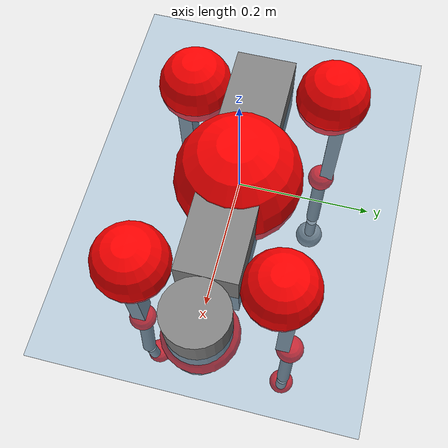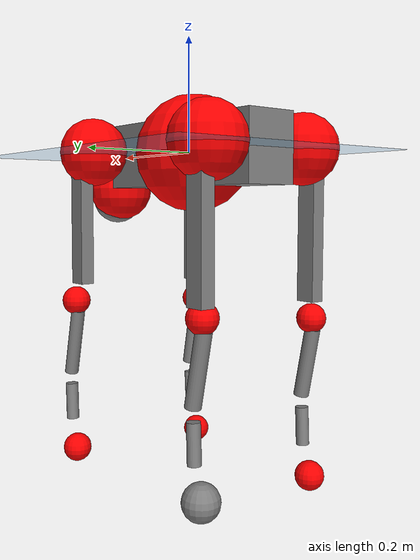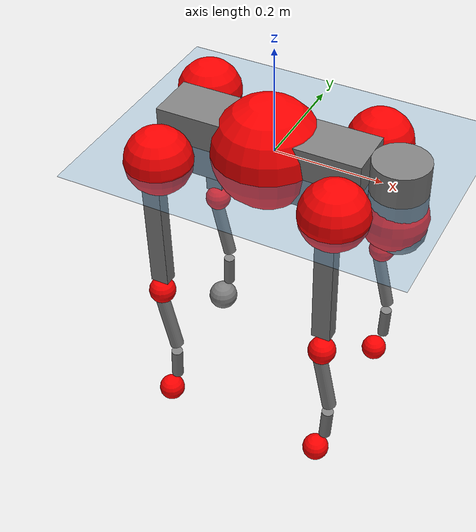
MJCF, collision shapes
<mujoco model="go2">
  <compiler angle="radian" assetdir="assets" balanceinertia="true" inertiafromgeom="false"/>

  <option timestep="0.005" density="1.2" viscosity="2e-05"/>

  <size nkey="1"/>

  <visual>
    <quality shadowsize="8192"/>
    <map shadowclip="0.5"/>
  </visual>

  <default>
    <default class="/">
      <geom contype="0" conaffinity="0" group="1" solref="-1000 -80"/>
      <site size="0.01 0.005 0.005" group="5"/>
      <general forcelimited="true" biastype="affine" gainprm="20" biasprm="0 -20 -0.5"/>
      <default class="go2">
        <joint armature="0.01" damping="0.01" frictionloss="0.2"/>
        <geom condim="1" margin="0.001"/>
        <default class="visual">
          <geom type="mesh" group="2"/>
        </default>
        <default class="collision">
          <geom group="3"/>
          <default class="foot">
            <geom size="0.022 0 0" condim="6" priority="1" friction="0.8 0.02 0.01" solimp="0.015 1 0.022"/>
          </default>
        </default>
        <default class="reward_collision_sphere">
          <geom group="5" rgba="1 0 0 1"/>
        </default>
      </default>
    </default>
  </default>

  <asset>
    <texture type="skybox" colorspace="auto" name="//unnamed_texture_0" builtin="gradient" rgb1="0.95 0.95 0.95" rgb2="0.95 0.95 0.95" width="100" height="600"/>
    <texture type="2d" colorspace="auto" name="texplane" builtin="checker" rgb1="0.345 0.575 0.748" rgb2="0.345 0.575 0.748" markrgb="1 1 1" width="512" height="512"/>
    <material name="MatPlane" class="/" texture="texplane" texuniform="true" texrepeat="2 2" specular="0.9"/>
    <material name="metal" class="/" rgba="0.9 0.95 0.95 1"/>
    <material name="black" class="/" rgba="0 0 0 1"/>
    <material name="white" class="/"/>
    <material name="gray" class="/" rgba="0.671705 0.692426 0.77427 1"/>
    <mesh name="base_0" class="/" file="base_0.obj"/>
    <mesh name="base_1" class="/" file="base_1.obj"/>
    <mesh name="base_2" class="/" file="base_2.obj"/>
    <mesh name="base_3" class="/" file="base_3.obj"/>
    <mesh name="base_4" class="/" file="base_4.obj"/>
    <mesh name="hip_0" class="/" file="hip_0.obj"/>
    <mesh name="hip_1" class="/" file="hip_1.obj"/>
    <mesh name="thigh_0" class="/" file="thigh_0.obj"/>
    <mesh name="thigh_1" class="/" file="thigh_1.obj"/>
    <mesh name="thigh_mirror_0" class="/" file="thigh_mirror_0.obj"/>
    <mesh name="thigh_mirror_1" class="/" file="thigh_mirror_1.obj"/>
    <mesh name="calf_0" class="/" file="calf_0.obj"/>
    <mesh name="calf_1" class="/" file="calf_1.obj"/>
    <mesh name="calf_mirror_0" class="/" file="calf_mirror_0.obj"/>
    <mesh name="calf_mirror_1" class="/" file="calf_mirror_1.obj"/>
    <mesh name="foot" class="/" file="foot.obj"/>
  </asset>

  <worldbody>
    <geom name="floor" class="/" size="100 100 0.125" type="plane" group="0" material="MatPlane"/>
    <light name="toplight_shadow" class="/" pos="0 0 5" dir="0.0990148 0.0990148 -0.990148" type="directional" ambient="0.04 0.04 0.04" diffuse="0.55 0.55 0.55" specular="0.12 0.12 0.12"/>
    <light name="toplight_fill" class="/" pos="0 0 5" dir="0.0990148 0.0990148 -0.990148" type="directional" castshadow="false" ambient="0.04 0.04 0.04" diffuse="0.3 0.3 0.3" specular="0.08 0.08 0.08"/>
    <body name="trunk" childclass="go2" pos="-0.0106218 -0.00395002 -0.000604034" quat="1 0.000225322 0.000311436 0.000887918">
      <inertial pos="0.0178104 -0.000602996 -0.00698427" quat="0.0186517 0.701934 -0.0159651 0.711819" mass="7.3212" diaginertia="0.0360481 0.0477656 0.0863327"/>
      <joint name="//unnamed_joint_0" type="free" armature="0" damping="0" frictionloss="0"/>
      <geom name="//unnamed_geom_1" class="visual" material="black" mesh="base_0"/>
      <geom name="//unnamed_geom_2" class="visual" material="black" mesh="base_1"/>
      <geom name="//unnamed_geom_3" class="visual" material="black" mesh="base_2"/>
      <geom name="//unnamed_geom_4" class="visual" material="white" mesh="base_3"/>
      <geom name="//unnamed_geom_5" class="visual" material="gray" mesh="base_4"/>
      <geom name="trunk_1" class="collision" size="0.191093 0.0474939 0.057907" type="box"/>
      <geom name="trunk_2" class="collision" size="0.0507957 0.0457161" pos="0.242027 0 0.0129404" type="cylinder"/>
      <geom name="trunk_3" class="collision" size="0.0477479" pos="0.248821 0 -0.0776425"/>
      <geom name="//unnamed_geom_9" class="reward_collision_sphere" size="0.101591"/>
      <geom name="//unnamed_geom_10" class="reward_collision_sphere" size="0.0609548" pos="0.237781 0 -0.0582319"/>
      <site name="imu" pos="-0.0336339 0.00199859 0.115401" size="0.0101591"/>
      <camera name="track" pos="0 -1.80896 0" quat="0.707107 0.707107 0 0" mode="trackcom"/>
      <camera name="ego_camera" pos="0.264956 0 0.0582319" quat="-0.5 -0.5 0.5 0.5"/>
      <body name="FL_hip" pos="0.165196 0.0411519 0.00631776" quat="0.999988 -0.00288425 -0.00301163 0.00253945">
        <inertial pos="0.00696392 0.00592105 -0.00187923" quat="0.494685 0.495146 0.510067 0.499949" mass="0.714418" diaginertia="0.000391803 0.000391403 0.00172021"/>
        <joint name="FL_hip_joint" pos="0 0 0" axis="0.997727 -0.0434521 -0.0514957" stiffness="0.0544532" range="-1.0571 1.04565" armature="0.0159563" damping="0.00201146" frictionloss="0.150484"/>
        <geom name="//unnamed_geom_11" class="visual" material="metal" mesh="hip_0"/>
        <geom name="//unnamed_geom_12" class="visual" material="gray" mesh="hip_1"/>
        <geom name="//unnamed_geom_13" class="collision" size="0.046732 0.0203183" pos="0 0.0723583 0" quat="0.707107 0.707107 0 0" type="cylinder"/>
        <geom name="//unnamed_geom_14" class="reward_collision_sphere" size="0.0609548" pos="0 0.0633135 0"/>
        <body name="FL_thigh" pos="0.00712148 0.0839412 0.00582549" quat="0.999997 0.00173929 -9.0537e-05 0.0014545">
          <inertial pos="-0.00390245 -0.0203141 -0.0296659" quat="0.819394 0.0756985 -0.00763308 0.568159" mass="1.27274" diaginertia="0.00278019 0.00370203 0.00326758"/>
          <joint name="FL_thigh_joint" pos="0 0 0" axis="0.00755707 0.999572 0.028249" stiffness="0.0343501" range="-1.65846 3.49022" armature="0.0048541" damping="0.0360189" frictionloss="0.266496"/>
          <geom name="//unnamed_geom_15" class="visual" material="metal" mesh="thigh_0"/>
          <geom name="//unnamed_geom_16" class="visual" material="gray" mesh="thigh_1"/>
          <geom name="//unnamed_geom_17" class="collision" size="0.108195 0.0124449 0.0172705" pos="0 0 -0.137815" quat="0.707107 0 0.707107 0" type="box"/>
          <body name="FL_calf" pos="0.00159668 0.0129868 -0.276694" quat="0.999992 0.00164425 -0.00313566 0.00179887">
            <inertial pos="0.000276354 0.00124236 -0.186031" quat="0.740104 -0.0272126 -0.028538 0.671336" mass="0.213043" diaginertia="0.000668627 0.000826653 0.000198545"/>
            <joint name="FL_calf_joint" pos="0 0 0" axis="0.0172177 0.999851 0.000888187" range="-2.70835 -0.823708" armature="0.0104143" damping="0.0446844" frictionloss="0.205577"/>
            <geom name="//unnamed_geom_18" class="visual" material="gray" mesh="calf_0"/>
            <geom name="//unnamed_geom_19" class="visual" material="black" mesh="calf_1"/>
            <geom name="FL_calf0" class="collision" size="0.012191 0.0609548" pos="0.00679374 0 -0.0776425" quat="0.994493 0 -0.104807 0" type="cylinder"/>
            <geom name="//unnamed_geom_21" class="collision" size="0.011175 0.0330172" pos="0.0169844 0 -0.191518" quat="0.999688 0 0.0249974 0" type="cylinder"/>
            <geom name="//unnamed_geom_22" class="visual" pos="0 0 -0.275631" quat="1 0 0 0" material="black" mesh="foot"/>
            <geom name="FL_foot" class="foot" size="0.0157479" pos="-0.00169844 0 -0.275631"/>
            <geom name="//unnamed_geom_24" class="reward_collision_sphere" size="0.0253978"/>
            <geom name="//unnamed_geom_25" class="reward_collision_sphere" size="0.0253978" pos="-0.00169844 0 -0.275631"/>
            <site name="FL_foot" class="foot" pos="-0.00169844 0 -0.275631" size="0.0101591"/>
          </body>
        </body>
      </body>
      <body name="FR_hip" pos="0.176994 -0.0544006 0.00942784" quat="1 0.000307808 -1.24658e-06 -0.000217478">
        <inertial pos="-0.0169681 -0.00411268 0.0110378" quat="0.51944 0.487962 0.5103 0.48132" mass="0.601732" diaginertia="0.000329234 0.000335234 0.00147862"/>
        <joint name="FR_hip_joint" pos="0 0 0" axis="0.998631 -0.0483712 0.0198905" stiffness="0.00124124" range="-0.819775 1.04221" armature="0.0111545" damping="0.00647804" frictionloss="0.301467"/>
        <geom name="//unnamed_geom_26" class="visual" pos="0 -3.39371e-09 -1.45563e-07" quat="4.63268e-05 1 0 0" material="metal" mesh="hip_0"/>
        <geom name="//unnamed_geom_27" class="visual" pos="0 -5.50161e-09 3.60034e-07" quat="4.63268e-05 1 0 0" material="gray" mesh="hip_1"/>
        <geom name="//unnamed_geom_28" class="collision" size="0.046732 0.0203183" pos="0 -0.0723583 0" quat="0.707107 0.707107 0 0" type="cylinder"/>
        <geom name="//unnamed_geom_29" class="reward_collision_sphere" size="0.0609548" pos="0 -0.0633135 0"/>
        <body name="FR_thigh" pos="-0.00128511 -0.0835506 -0.00638118" quat="1 -0.00020792 0.000154088 -1.62937e-05">
          <inertial pos="0.00231684 0.00663018 -0.0446685" quat="0.551317 -0.0232566 0.0829233 0.829838" mass="1.16279" diaginertia="0.00258435 0.0033639 0.00307596"/>
          <joint name="FR_thigh_joint" pos="0 0 0" axis="0.0241832 -0.999109 0.0345805" range="-3.48671 1.46361" armature="0.0115501" damping="0.0466684" frictionloss="0.19086"/>
          <geom name="//unnamed_geom_30" class="visual" material="metal" mesh="thigh_mirror_0"/>
          <geom name="//unnamed_geom_31" class="visual" material="gray" mesh="thigh_mirror_1"/>
          <geom name="//unnamed_geom_32" class="collision" size="0.108195 0.0124449 0.0172705" pos="0 0 -0.137815" quat="0.707107 0 0.707107 0" type="box"/>
          <body name="FR_calf" pos="6.5532e-05 -0.00273632 -0.285451" quat="0.999981 0.000284071 0.00558501 0.00277105">
            <inertial pos="-0.00831803 0.0077357 -0.192664" quat="0.704074 -0.00798512 -0.00219109 0.710078" mass="0.286024" diaginertia="0.000617945 0.000780788 0.000163935"/>
            <joint name="FR_calf_joint" pos="0 0 0" axis="-0.00585429 -0.999884 -0.0140475" range="1.07118 2.70913" armature="0.00992033" damping="0" frictionloss="0.0976276"/>
            <geom name="//unnamed_geom_33" class="visual" material="gray" mesh="calf_mirror_0"/>
            <geom name="//unnamed_geom_34" class="visual" material="black" mesh="calf_mirror_1"/>
            <geom name="FR_calf0" class="collision" size="0.0132069 0.0609548" pos="0.00849218 0 -0.0776425" quat="0.995004 0 -0.0998334 0" type="cylinder"/>
            <geom name="//unnamed_geom_36" class="collision" size="0.011175 0.0330172" pos="0.0169844 0 -0.191518" quat="0.999688 0 0.0249974 0" type="cylinder"/>
            <geom name="//unnamed_geom_37" class="visual" pos="0 0 -0.275631" quat="1 0 0 0" material="black" mesh="foot"/>
            <geom name="FR_foot" class="foot" size="0.0244324" pos="-0.00169844 0 -0.275631"/>
            <geom name="//unnamed_geom_39" class="reward_collision_sphere" size="0.0253978"/>
            <geom name="//unnamed_geom_40" class="reward_collision_sphere" size="0.0253978" pos="-0.00169844 0 -0.275631"/>
            <site name="FR_foot" class="foot" pos="-0.00169844 0 -0.275631" size="0.0101591"/>
          </body>
        </body>
      </body>
      <body name="RL_hip" pos="-0.178166 0.0523226 0.00504036" quat="0.999999 -0.00137055 0.000323101 0.000506769">
        <inertial pos="-0.00717631 0.0150733 0.00170431" quat="0.521353 0.453905 0.504493 0.517347" mass="0.743752" diaginertia="0.000394775 0.000358005 0.00192563"/>
        <joint name="RL_hip_joint" pos="0 0 0" axis="-0.999737 0.00943468 0.0208915" stiffness="0.00121319" range="-1.20197 0.970396" armature="0.0101178" damping="0.0124318" frictionloss="0.237287"/>
        <geom name="//unnamed_geom_41" class="visual" pos="3.87512e-09 0 7.59613e-07" quat="4.63268e-05 0 1 0" material="metal" mesh="hip_0"/>
        <geom name="//unnamed_geom_42" class="visual" pos="6.28203e-09 0 6.73668e-07" quat="4.63268e-05 0 1 0" material="gray" mesh="hip_1"/>
        <geom name="//unnamed_geom_43" class="collision" size="0.046732 0.0203183" pos="0 0.0723583 0" quat="0.707107 0.707107 0 0" type="cylinder"/>
        <geom name="//unnamed_geom_44" class="reward_collision_sphere" size="0.0609548" pos="0 0.0633135 0"/>
        <body name="RL_thigh" pos="-0.00590177 0.0824471 0.00276359" quat="0.999998 0.000749138 3.37337e-05 0.00168588">
          <inertial pos="-0.00471677 -0.0322816 -0.0413407" quat="0.851971 0.0928965 -0.0182603 0.514959" mass="1.06518" diaginertia="0.00258373 0.00320959 0.00333256"/>
          <joint name="RL_thigh_joint" pos="0 0 0" axis="0.0329282 0.998469 -0.0444524" stiffness="0.0407137" range="-0.677875 4.39981" armature="0.00461252" damping="0" frictionloss="0.103968"/>
          <geom name="//unnamed_geom_45" class="visual" material="metal" mesh="thigh_0"/>
          <geom name="//unnamed_geom_46" class="visual" material="gray" mesh="thigh_1"/>
          <geom name="//unnamed_geom_47" class="collision" size="0.108195 0.0124449 0.0172705" pos="0 0 -0.137815" quat="0.707107 0 0.707107 0" type="box"/>
          <body name="RL_calf" pos="0.00697949 -0.00940862 -0.262848" quat="0.999979 0.00462589 -0.00351732 -0.00287778">
            <inertial pos="0.00554381 -0.00134809 -0.196797" quat="0.703544 -0.00322494 -0.0317718 0.709933" mass="0.293042" diaginertia="0.00065885 0.00095527 0.000199391"/>
            <joint name="RL_calf_joint" pos="0 0 0" axis="0.0191383 0.999817 -0.000531978" stiffness="0.0241841" range="-2.76244 -0.696967" armature="0.00919777" damping="0.015564" frictionloss="0.293463"/>
            <geom name="//unnamed_geom_48" class="visual" material="gray" mesh="calf_0"/>
            <geom name="//unnamed_geom_49" class="visual" material="black" mesh="calf_1"/>
            <geom name="RL_calf0" class="collision" size="0.0132069 0.0609548" pos="0.00849218 0 -0.0776425" quat="0.995004 0 -0.0998334 0" type="cylinder"/>
            <geom name="//unnamed_geom_51" class="collision" size="0.011175 0.0330172" pos="0.0169844 0 -0.191518" quat="0.999688 0 0.0249974 0" type="cylinder"/>
            <geom name="//unnamed_geom_52" class="visual" pos="0 0 -0.275631" quat="1 0 0 0" material="black" mesh="foot"/>
            <geom name="RL_foot" class="foot" size="0.0303773" pos="-0.00169844 0 -0.275631"/>
            <geom name="//unnamed_geom_54" class="reward_collision_sphere" size="0.0253978"/>
            <geom name="//unnamed_geom_55" class="reward_collision_sphere" size="0.0253978" pos="-0.00169844 0 -0.275631"/>
            <site name="RL_foot" class="foot" pos="-0.00169844 0 -0.275631" size="0.0101591"/>
          </body>
        </body>
      </body>
      <body name="RR_hip" pos="-0.152396 -0.0464301 0.00281703" quat="0.999999 -0.000325947 8.0655e-06 -0.00165102">
        <inertial pos="-0.00357212 -0.00742764 0.00155258" quat="0.450414 0.517133 0.495335 0.533239" mass="0.719895" diaginertia="0.000364657 0.000332543 0.00161354"/>
        <joint name="RR_hip_joint" pos="0 0 0" axis="-0.998089 0.0617695 -0.00164157" stiffness="0.00304901" range="-1.03864 0.986804" armature="0.0123038" damping="0" frictionloss="0.216345"/>
        <geom name="//unnamed_geom_56" class="visual" pos="-3.87321e-09 -3.39371e-09 9.05176e-07" quat="2.14617e-09 4.63268e-05 4.63268e-05 -1" material="metal" mesh="hip_0"/>
        <geom name="//unnamed_geom_57" class="visual" pos="-6.28677e-09 -5.50161e-09 3.13635e-07" quat="2.14617e-09 4.63268e-05 4.63268e-05 -1" material="gray" mesh="hip_1"/>
        <geom name="//unnamed_geom_58" class="collision" size="0.046732 0.0203183" pos="0 -0.0723583 0" quat="0.707107 0.707107 0 0" type="cylinder"/>
        <geom name="//unnamed_geom_59" class="reward_collision_sphere" size="0.0609548" pos="0 -0.0633135 0"/>
        <body name="RR_thigh" pos="-0.000816787 -0.0843092 -0.0106637" quat="0.999998 0.000804361 -0.00153563 0.00067637">
          <inertial pos="-0.00527118 0.0193472 -0.0450882" quat="0.545467 -0.0831267 0.0679064 0.831231" mass="1.26009" diaginertia="0.0026399 0.00316961 0.00270859"/>
          <joint name="RR_thigh_joint" pos="0 0 0" axis="0.00842304 -0.999948 0.00575264" stiffness="0.040494" range="-4.51349 0.453659" armature="0.00570546" damping="0.0564776" frictionloss="0.257272"/>
          <geom name="//unnamed_geom_60" class="visual" material="metal" mesh="thigh_mirror_0"/>
          <geom name="//unnamed_geom_61" class="visual" material="gray" mesh="thigh_mirror_1"/>
          <geom name="//unnamed_geom_62" class="collision" size="0.108195 0.0124449 0.0172705" pos="0 0 -0.137815" quat="0.707107 0 0.707107 0" type="box"/>
          <body name="RR_calf" pos="-0.00239343 -0.00211753 -0.275548" quat="1 0.000709878 -0.000531473 0.000314601">
            <inertial pos="0.0157988 0.0130866 -0.194687" quat="0.705502 -0.00703122 0.000579311 0.708673" mass="0.22152" diaginertia="0.000717181 0.000772104 0.000194716"/>
            <joint name="RR_calf_joint" pos="0 0 0" axis="-0.0146847 -0.999814 -0.0124924" stiffness="0.00330748" range="0.90823 2.48844" armature="0.0103614" damping="0" frictionloss="0.0817136"/>
            <geom name="//unnamed_geom_63" class="visual" material="gray" mesh="calf_mirror_0"/>
            <geom name="//unnamed_geom_64" class="visual" material="black" mesh="calf_mirror_1"/>
            <geom name="RR_calf0" class="collision" size="0.0132069 0.0609548" pos="0.00849218 0 -0.0776425" quat="0.995004 0 -0.0998334 0" type="cylinder"/>
            <geom name="//unnamed_geom_66" class="collision" size="0.011175 0.0330172" pos="0.0169844 0 -0.191518" quat="0.999688 0 0.0249974 0" type="cylinder"/>
            <geom name="//unnamed_geom_67" class="visual" pos="0 0 -0.275631" quat="1 0 0 0" material="black" mesh="foot"/>
            <geom name="RR_foot" class="foot" size="0.0127541" pos="-0.00169844 0 -0.275631"/>
            <geom name="//unnamed_geom_69" class="reward_collision_sphere" size="0.0253978"/>
            <geom name="//unnamed_geom_70" class="reward_collision_sphere" size="0.0253978" pos="-0.00169844 0 -0.275631"/>
            <site name="RR_foot" class="foot" pos="-0.00169844 0 -0.275631" size="0.0101591"/>
          </body>
        </body>
      </body>
    </body>
  </worldbody>

  <contact>
    <pair class="/" geom1="floor" geom2="FL_foot" name="//unnamed_contact_0"/>
    <pair class="/" geom1="floor" geom2="FR_foot" name="//unnamed_contact_1"/>
    <pair class="/" geom1="floor" geom2="RL_foot" name="//unnamed_contact_2"/>
    <pair class="/" geom1="floor" geom2="RR_foot" name="//unnamed_contact_3"/>
  </contact>

  <actuator>
    <general name="FL_hip" class="/" joint="FL_hip_joint" forcerange="-23.7929 23.7929" gainprm="21.0865" biasprm="0 -21.0865 -0.471778"/>
    <general name="FL_thigh" class="/" joint="FL_thigh_joint" forcerange="-32.8618 32.8618" gainprm="21.0865" biasprm="0 -21.0865 -0.471778"/>
    <general name="FL_calf" class="/" joint="FL_calf_joint" forcerange="-38.5431 38.5431" gainprm="21.0865" biasprm="0 -21.0865 -0.471778"/>
    <general name="FR_hip" class="/" joint="FR_hip_joint" forcerange="-23.894 23.894" gainprm="21.0865" biasprm="0 -21.0865 -0.471778"/>
    <general name="FR_thigh" class="/" joint="FR_thigh_joint" forcerange="-23.8885 23.8885" gainprm="21.0865" biasprm="0 -21.0865 -0.471778"/>
    <general name="FR_calf" class="/" joint="FR_calf_joint" forcerange="-34.7802 34.7802" gainprm="21.0865" biasprm="0 -21.0865 -0.471778"/>
    <general name="RL_hip" class="/" joint="RL_hip_joint" forcerange="-24.144 24.144" gainprm="21.0865" biasprm="0 -21.0865 -0.471778"/>
    <general name="RL_thigh" class="/" joint="RL_thigh_joint" forcerange="-17.9016 17.9016" gainprm="21.0865" biasprm="0 -21.0865 -0.471778"/>
    <general name="RL_calf" class="/" joint="RL_calf_joint" forcerange="-56.6343 56.6343" gainprm="21.0865" biasprm="0 -21.0865 -0.471778"/>
    <general name="RR_hip" class="/" joint="RR_hip_joint" forcerange="-23.3878 23.3878" gainprm="21.0865" biasprm="0 -21.0865 -0.471778"/>
    <general name="RR_thigh" class="/" joint="RR_thigh_joint" forcerange="-21.4801 21.4801" gainprm="21.0865" biasprm="0 -21.0865 -0.471778"/>
    <general name="RR_calf" class="/" joint="RR_calf_joint" forcerange="-68.6209 68.6209" gainprm="21.0865" biasprm="0 -21.0865 -0.471778"/>
  </actuator>

  <sensor>
    <gyro site="imu" name="imu_angular_velocity"/>
    <velocimeter site="imu" name="imu_linear_velocity"/>
    <framelinvel objtype="site" objname="FL_foot" name="FL_foot_global_linear_velocity"/>
    <framelinvel objtype="site" objname="FR_foot" name="FR_foot_global_linear_velocity"/>
    <framelinvel objtype="site" objname="RL_foot" name="RL_foot_global_linear_velocity"/>
    <framelinvel objtype="site" objname="RR_foot" name="RR_foot_global_linear_velocity"/>
  </sensor>

  <keyframe>
    <key name="home" qpos="0 0 0.325 1 0 0 0 0.1 0.8 -1.5 -0.1 -0.8 1.5 -0.1 0.8 -1.5 0.1 -0.8 1.5"/>
  </keyframe>
</mujoco>
